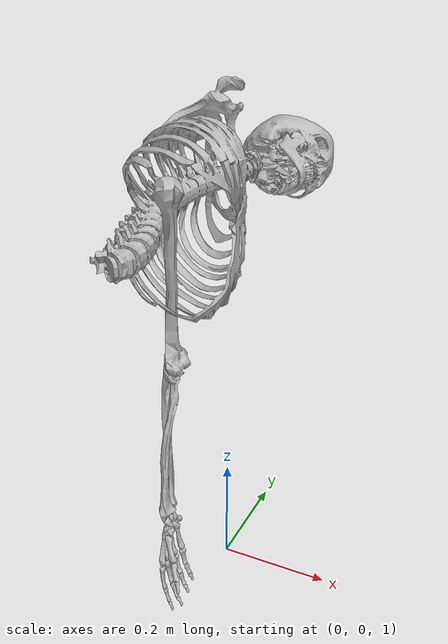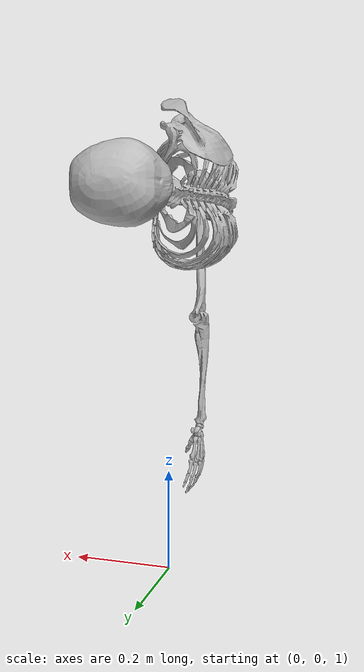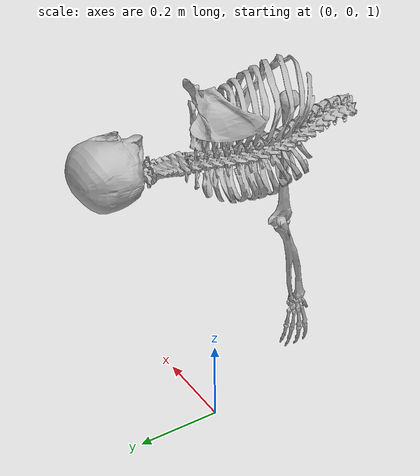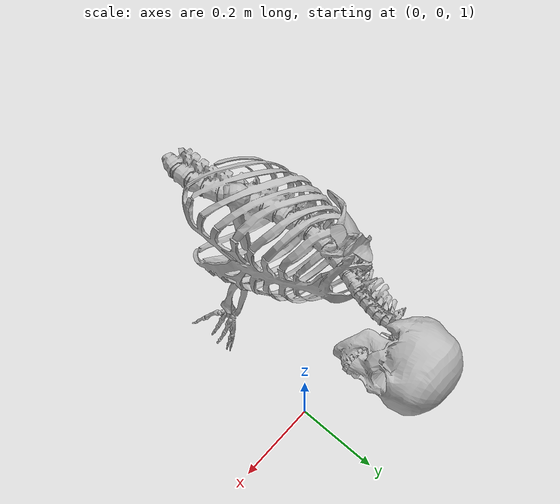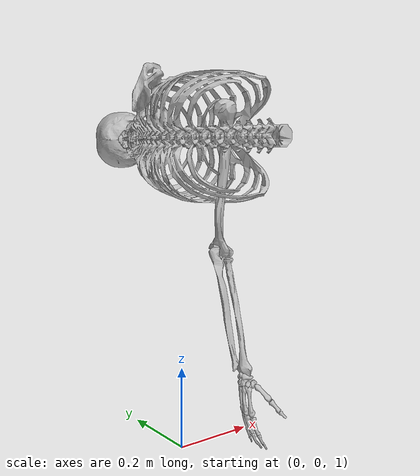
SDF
<?xml version='1.0'?>
<sdf version="1.5">
    <model name="skeleton">
        <pose>0 0 0 0 -0 0</pose>
        <link name="skeleton">
            <pose>-0.02371838688850403 -0.006475403904914856 1.7455708980560303 1.5707963705062866 -0.0 0.0</pose>
            <inertial>
                <inertia>
                    <ixx>0.0001</ixx>
                    <ixy>0</ixy>
                    <ixz>0</ixz>
                    <iyy>0.0001</iyy>
                    <iyz>0</iyz>
                    <izz>0.0001</izz>
                </inertia>
                <mass>0.20000000298023224</mass>
            </inertial>
            <visual name="visual">
                <pose>0 0 0 -1.5757 -0 0</pose>
                <geometry>
                    <mesh><uri>model://meshes/skeleton.dae</uri></mesh>
                </geometry>
            </visual>
            <collision name="collision">
                <pose>0 0 0 -1.5757 -0 0</pose>
                <geometry>
                    <mesh><uri>model://meshes/skeleton.dae</uri></mesh>
                </geometry>
            </collision>
        </link>
        <link name="upper_arm">
            <pose>-0.017282448709011078 -0.1665889173746109 1.6547614336013794 1.5707963705062866 -0.0 0.0</pose>
            <inertial>
                <inertia>
                    <ixx>0.0001</ixx>
                    <ixy>0</ixy>
                    <ixz>0</ixz>
                    <iyy>0.0001</iyy>
                    <iyz>0</iyz>
                    <izz>0.0001</izz>
                </inertia>
                <mass>0.19999998807907104</mass>
            </inertial>
            <visual name="visual">
                <pose>0 0 0 0 -0 0</pose>
                <geometry>
                    <mesh><uri>model://meshes/upper_arm.obj</uri></mesh>
                </geometry>
            </visual>
            <collision name="collision">
                <pose>0 0 0 0 -0 0</pose>
                <geometry>
                    <mesh><uri>model://meshes/upper_arm.obj</uri></mesh>
                </geometry>
            </collision>
        </link>
        <link name="forearm">
            <pose>-0.015147986821830273 -0.19349825382232666 1.3854427337646484 1.5707963705062866 -0.0 0.0</pose>
            <inertial>
                <inertia>
                    <ixx>0.0001</ixx>
                    <ixy>0</ixy>
                    <ixz>0</ixz>
                    <iyy>0.0001</iyy>
                    <iyz>0</iyz>
                    <izz>0.0001</izz>
                </inertia>
                <mass>0.19999998807907104</mass>
            </inertial>
            <visual name="visual">
                <pose>0 0 0 0 -0 0</pose>
                <geometry>
                    <mesh><uri>model://meshes/forearm.obj</uri></mesh>
                </geometry>
            </visual>
            <collision name="collision">
                <pose>0 0 0 0 -0 0</pose>
                <geometry>
                    <mesh><uri>model://meshes/forearm.obj</uri></mesh>
                </geometry>
            </collision>
        </link>
        <link name="hand">
            <pose>0.00017236836720257998 -0.22414515912532806 1.2197521924972534 1.5707963705062866 -0.0 0.0</pose>
            <inertial>
                <inertia>
                    <ixx>0.0001</ixx>
                    <ixy>0</ixy>
                    <ixz>0</ixz>
                    <iyy>0.0001</iyy>
                    <iyz>0</iyz>
                    <izz>0.0001</izz>
                </inertia>
                <mass>0.19999998807907104</mass>
            </inertial>
            <visual name="visual">
                <pose>0 0 0 0 -0 0</pose>
                <geometry>
                    <mesh><uri>model://meshes/hand.obj</uri></mesh>
                </geometry>
            </visual>
            <collision name="collision">
                <pose>0 0 0 0 -0 0</pose>
                <geometry>
                    <mesh><uri>model://meshes/hand_col.dae</uri></mesh>
                </geometry>
                <surface>
                    <friction>
                        <ode>
                            <mu>10</mu>
                            <mu2>10</mu2>
                        </ode>
                    </friction>
		        </surface>
            </collision>
        </link>
	<link name="thumb_1">
            <pose>0.01882072165608406 -0.2590509057044983 1.2172046899795532 1.5707963705062866 -0.0 0.0</pose>
            <inertial>
                <inertia>
                    <ixx>0.0001</ixx>
                    <ixy>0</ixy>
                    <ixz>0</ixz>
                    <iyy>0.0001</iyy>
                    <iyz>0</iyz>
                    <izz>0.0001</izz>
                </inertia>
                <mass>0.19999998807907104</mass>
            </inertial>
            <visual name="visual">
                <pose>0 0 0 0 -0 0</pose>
                <geometry>
                    <mesh><uri>model://meshes/thumb_1.obj</uri></mesh>
                </geometry>
            </visual>
        </link>
        <link name="thumb_2">
            <pose>0.035507991909980774 -0.2781006395816803 1.1910896301269531 1.5707963705062866 2.980238988925521e-08 -3.7253098383871475e-09</pose>
            <inertial>
                <inertia>
                    <ixx>0.0001</ixx>
                    <ixy>0</ixy>
                    <ixz>0</ixz>
                    <iyy>0.0001</iyy>
                    <iyz>0</iyz>
                    <izz>0.0001</izz>
                </inertia>
                <mass>0.19999998807907104</mass>
            </inertial>
            <visual name="visual">
                <pose>0 0 0 0 -0 0</pose>
                <geometry>
                    <mesh><uri>model://meshes/thumb_2.obj</uri></mesh>
                </geometry>
            </visual>
        </link>
        <link name="thumb_3">
            <pose>0.04606077820062637 -0.29002290964126587 1.1742767095565796 1.5381336212158203 -0.012799005955457687 -0.015970906242728233</pose>
            <inertial>
                <inertia>
                    <ixx>0.0001</ixx>
                    <ixy>0</ixy>
                    <ixz>0</ixz>
                    <iyy>0.0001</iyy>
                    <iyz>0</iyz>
                    <izz>0.0001</izz>
                </inertia>
                <mass>0.19999998807907104</mass>
            </inertial>
            <visual name="visual">
                <pose>0 0 0 0 -0 0</pose>
                <geometry>
                    <mesh><uri>model://meshes/thumb_3.obj</uri></mesh>
                </geometry>
            </visual>
        </link>
        <link name="proximal">
            <pose>0.004435993731021881 -0.23311419785022736 1.1511282920837402 1.5707964897155762 0.049396030604839325 1.5318446511258799e-09</pose>
            <inertial>
                <inertia>
                    <ixx>0.0001</ixx>
                    <ixy>0</ixy>
                    <ixz>0</ixz>
                    <iyy>0.0001</iyy>
                    <iyz>0</iyz>
                    <izz>0.0001</izz>
                </inertia>
                <mass>0.19999998807907104</mass>
            </inertial>
            <visual name="visual">
                <pose>0 0 0 0 -0 0</pose>
                <geometry>
                    <mesh><uri>model://meshes/proximal.obj</uri></mesh>
                </geometry>
            </visual>
            <collision name="collision">
                <pose>0 0 0 0 -0 0</pose>
                <geometry>
                    <mesh><uri>model://meshes/proximal_col.dae</uri></mesh>
                </geometry>
                <surface>
                    <friction>
                        <ode>
                            <mu>10</mu>
                            <mu2>10</mu2>
                        </ode>
                    </friction>
                </surface>
            </collision>
        </link>
        <link name="middle">
            <pose>0.01475201454013586 -0.23537978529930115 1.1197322607040405 1.5707963705062866 -0.12925152480602264 -1.8796277034827114e-10</pose>
            <inertial>
                <inertia>
                    <ixx>0.0001</ixx>
                    <ixy>0</ixy>
                    <ixz>0</ixz>
                    <iyy>0.0001</iyy>
                    <iyz>0</iyz>
                    <izz>0.0001</izz>
                </inertia>
                <mass>0.19999998807907104</mass>
            </inertial>
            <visual name="visual">
                <pose>0 0 0 0 -0 0</pose>
                <geometry>
                    <mesh><uri>model://meshes/middle.obj</uri></mesh>
                </geometry>
            </visual>
            <collision name="collision">
                <pose>0 0 0 0 -0 0</pose>
                <geometry>
                    <mesh><uri>model://meshes/middle_col.dae</uri></mesh>
                </geometry>
                <surface>
                    <friction>
                        <ode>
                            <mu>10</mu>
                            <mu2>10</mu2>
                        </ode>
                    </friction>
                </surface>
            </collision>
        </link>
        <link name="distal">
            <pose>0.024000873789191246 -0.2371281534433365 1.1017308235168457 1.5707963705062866 -0.14935961365699768 4.265647834955644e-09</pose>
            <inertial>
                <inertia>
                    <ixx>0.0001</ixx>
                    <ixy>0</ixy>
                    <ixz>0</ixz>
                    <iyy>0.0001</iyy>
                    <iyz>0</iyz>
                    <izz>0.0001</izz>
                </inertia>
                <mass>0.19999998807907104</mass>
            </inertial>
            <visual name="visual">
                <pose>0 0 0 0 -0 0</pose>
                <geometry>
                    <mesh><uri>model://meshes/distal.obj</uri></mesh>
                </geometry>
            </visual>
            <collision name="collision">
                <pose>0 0 0 0 -0 0</pose>
                <geometry>
                    <mesh><uri>model://meshes/distal.obj</uri></mesh>
                </geometry>
                <surface>
                    <friction>
                        <ode>
                            <mu>10</mu>
                            <mu2>10</mu2>
                        </ode>
                    </friction>
                </surface>
            </collision>
        </link>

        <joint name="shoulder_joint" type="fixed">
            <parent>skeleton</parent>
            <child>upper_arm</child>
            <pose>-0.0002625510096549988 0.1382385492324829 0.0034110769629478455 5.479091100824007e-07 -4.2146872658577195e-08 -1.570796251296997</pose>
            <axis>
                <xyz>0 0 1</xyz>
                <limit>
                    <lower>-0.1</lower>
                    <upper>0.7853981852531433</upper>
                </limit>
            </axis>
            <dynamics>
                <spring_reference>0.4</spring_reference>
                <spring_stiffness>20</spring_stiffness>
                <damping>4</damping>
            </dynamics>
        </joint>
        <joint name="elbow_joint" type="revolute">
            <parent>upper_arm</parent>
            <child>forearm</child>
            <pose>0.003702986752614379 0.11655723303556442 -0.035798244178295135 5.479091100824007e-07 -4.2146872658577195e-08 -1.570796251296997</pose>
            <axis>
                <xyz>0 0 1</xyz>
                <limit>
                    <lower>0.0</lower>
                    <upper>1.5707963705062866</upper>
                </limit>
            </axis>
                <dynamics>
                    <spring_reference>0.2</spring_reference>
                    <spring_stiffness>5</spring_stiffness>
                    <damping>1</damping>
                </dynamics>
        </joint>
        <joint name="hand_joint_1" type="fixed">
            <parent>forearm</parent>
            <child>hand</child>
            <pose>-0.003728454699739814 0.04303407669067383 -0.002157732844352722 5.479091100824007e-07 -4.2146872658577195e-08 -1.570796251296997</pose>
            <axis>
                <xyz>0 0 1</xyz>
                <limit>
                    <lower>0.0</lower>
                    <upper>1.5707963705062866</upper>
                </limit>
                <dynamics>
                    <spring_reference>0</spring_reference>
                    <spring_stiffness>10</spring_stiffness>
                    <damping>1</damping>
                </dynamics>
            </axis>
        </joint>
        <joint name="proximal_joint" type="fixed">
            <parent>hand</parent>
            <child>proximal</child>
            <pose>-0.006849215365946293 0.01723306067287922 -0.006170365028083324 0.18470512330532074 -0.15172354876995087 -1.2801685333251953</pose>
            <axis>
                <xyz>0 0 1</xyz>
                <limit>
                    <lower>0.0</lower>
                    <upper>2.0</upper>
                </limit>
                <dynamics>
                    <spring_reference>2.0</spring_reference>
                    <spring_stiffness>0.5</spring_stiffness>
                    <damping>0.01</damping>
                </dynamics>
            </axis>
        </joint>
        <joint name="thumb_joint_01" type="fixed">
            <parent>hand</parent>
            <child>thumb_1</child>
            <pose>-0.01046721264719963 0.01605987548828125 -0.016701191663742065 -2.392087459564209 -0.6794252395629883 -0.9853883385658264</pose>
            <axis>
                <xyz>0 0 1</xyz>
                <limit>
                    <lower>-0.7853981852531433</lower>
                    <upper>0.7853981852531433</upper>
                </limit>
                <dynamics>
                    <spring_reference>0</spring_reference>
                    <spring_stiffness>1</spring_stiffness>
                    <damping>0.1</damping>
                </dynamics>
            </axis>
        </joint>
        <joint name="thumb_joint_12" type="fixed">
            <parent>thumb_1</parent>
            <child>thumb_2</child>
            <pose>-0.007540013175457716 0.013107539154589176 -0.009685487486422062 -1.7563650608062744 -0.576974093914032 -1.0101017951965332</pose>
            <axis>
                <xyz>0 0 1</xyz>
                <limit>
                    <lower>0.0</lower>
                    <upper>1.5707963705062866</upper>
                </limit>
                <dynamics>
                    <spring_reference>0</spring_reference>
                    <spring_stiffness>1</spring_stiffness>
                    <damping>0.1</damping>
                </dynamics>
            </axis>
        </joint>
        <joint name="thumb_joint_23" type="fixed">
            <parent>thumb_2</parent>
            <child>thumb_3</child>
            <pose>-0.004397843033075333 0.006628620438277721 -0.00488283671438694 -1.7522913217544556 -0.5405974984169006 -1.0248005390167236</pose>
            <axis>
                <xyz>0 0 1</xyz>
                <limit>
                    <lower>0.0</lower>
                    <upper>1.5707963705062866</upper>
                </limit>
                <dynamics>
                    <spring_reference>0</spring_reference>
                    <spring_stiffness>1</spring_stiffness>
                    <damping>0.1</damping>
                </dynamics>
            </axis>
        </joint>
        <joint name="middle_joint" type="fixed">
            <parent>proximal</parent>
            <child>middle</child>
            <pose>-0.005126905627548695 0.008538579568266869 -0.001958192093297839 0.18470518290996552 -0.1517234593629837 -1.4588162899017334</pose>
            <axis>
                <xyz>0 0 1</xyz>
                <limit>
                    <lower>0.0</lower>
                    <upper>1.5707963705062866</upper>
                </limit>
                <dynamics>
                    <spring_reference>1.57</spring_reference>
                    <spring_stiffness>0.5</spring_stiffness>
                    <damping>0.1</damping>
                </dynamics>
            </axis>
        </joint>
        <joint name="distal_joint" type="fixed">
            <parent>middle</parent>
            <child>distal</child>
            <pose>-0.0028767052572220564 0.0012630047276616096 -0.0008793922024779022 0.18470518290996552 -0.1517234444618225 -1.4789243936538696</pose>
            <axis>
                <xyz>0 0 1</xyz>
                <limit>
                    <lower>0.0</lower>
                    <upper>1.5707963705062866</upper>
                </limit>
                <dynamics>
                    <spring_reference>1.57</spring_reference>
                    <spring_stiffness>0.5</spring_stiffness>
                    <damping>0.01</damping>
                </dynamics>
            </axis>
        </joint>
        <plugin name="CapMaterial" filename="ModelCapacitivePropertiesPlugin.so">
            <RelativePermittivity>100000.0</RelativePermittivity>
        </plugin>
    </model>
</sdf>
